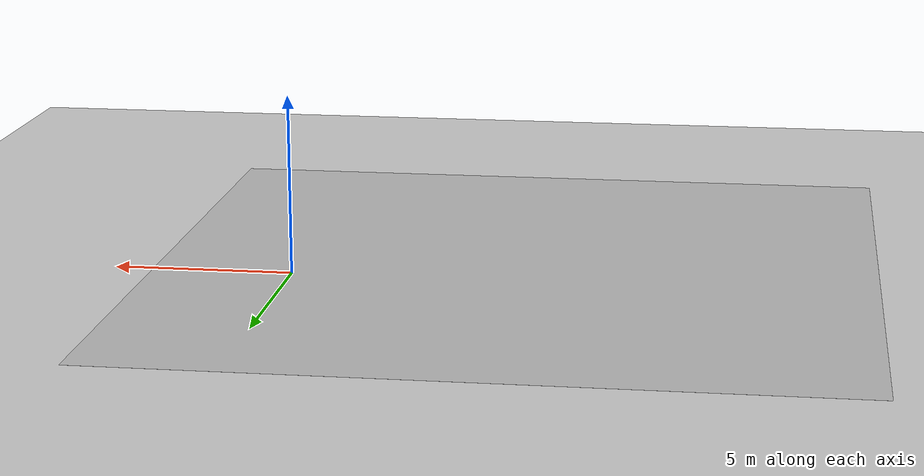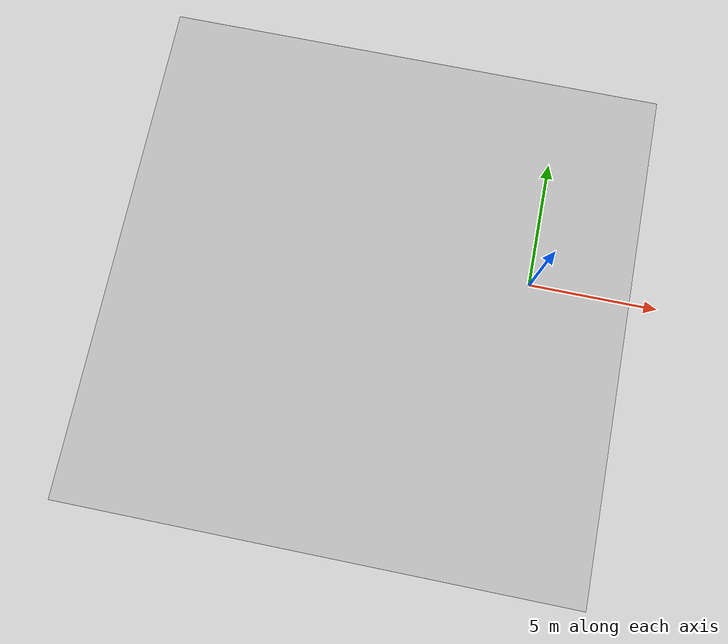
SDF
<?xml version="1.0" ?>
<sdf version="1.7">
    <world name="empty_world">
        <light type="directional" name="sun">
            <cast_shadows>true</cast_shadows>
            <pose>0 0 10 0 0 0</pose>
            <diffuse>0.8 0.8 0.8 1</diffuse>
            <specular>0.2 0.2 0.2 1</specular>
            <attenuation>
                <range>1000</range>
                <constant>0.9</constant>
                <linear>0.01</linear>
                <quadratic>0.001</quadratic>
            </attenuation>
            <direction>-0.5 0.1 -0.9</direction>
        </light>

        <model name="ground_plane">
            <static>true</static>
           <link name="link">
                <collision name="collision">
                    <geometry>
                        <plane>
                            <normal>0 0 1</normal>
                        </plane>
                    </geometry>
                </collision>
                <visual name="visual">
                    <geometry>
                        <plane>
                            <normal>0 0 1</normal>
                            <size>100 100</size>
                        </plane>
                    </geometry>
                    <material>
                        <ambient>0.8 0.8 0.8 1</ambient>
                        <diffuse>0.8 0.8 0.8 1</diffuse>
                        <specular>0.8 0.8 0.8 1</specular>
                    </material>
                </visual>
            </link>
        </model>
        <model name='RoomWall'>
        <include>
            <uri>model://Floor_room</uri>
        </include>
        <pose frame=''>-6.097550 -1.496180 0.028124 0 -0 0</pose>
	    </model>
    </world>
</sdf>

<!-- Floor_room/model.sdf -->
<sdf version='1.6'>
  <model name='Floor_room'>
    <link name='main'>
	<pose frame=''>0 0 0.01 0 0 0</pose>
      <collision name='main_Collision'>
        <geometry>
          <box>
            <size>20 20 0.001 </size>
          </box>
        </geometry>
       </collision>
      <visual name='main_Visual'>
        <geometry>
          <box>
          <size>20 20 0.001</size>
          </box>
        </geometry>
           <material>
          <script>
            <uri>model://Floor_room/materials/scripts</uri>
            <uri>model://Floor_room/materials/textures</uri>
            <name>floor_room</name>
          </script>
        </material>
      </visual>
     </link>
    <static>1</static>
  </model>
</sdf>
